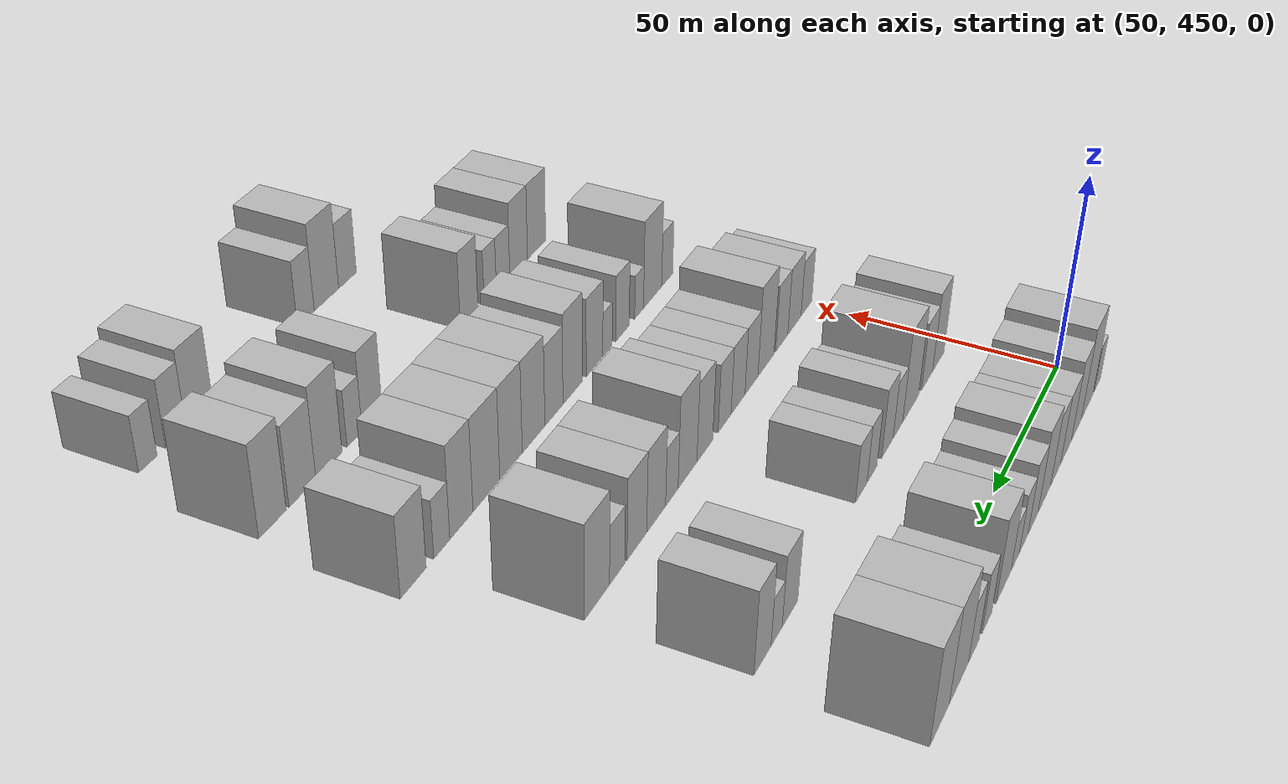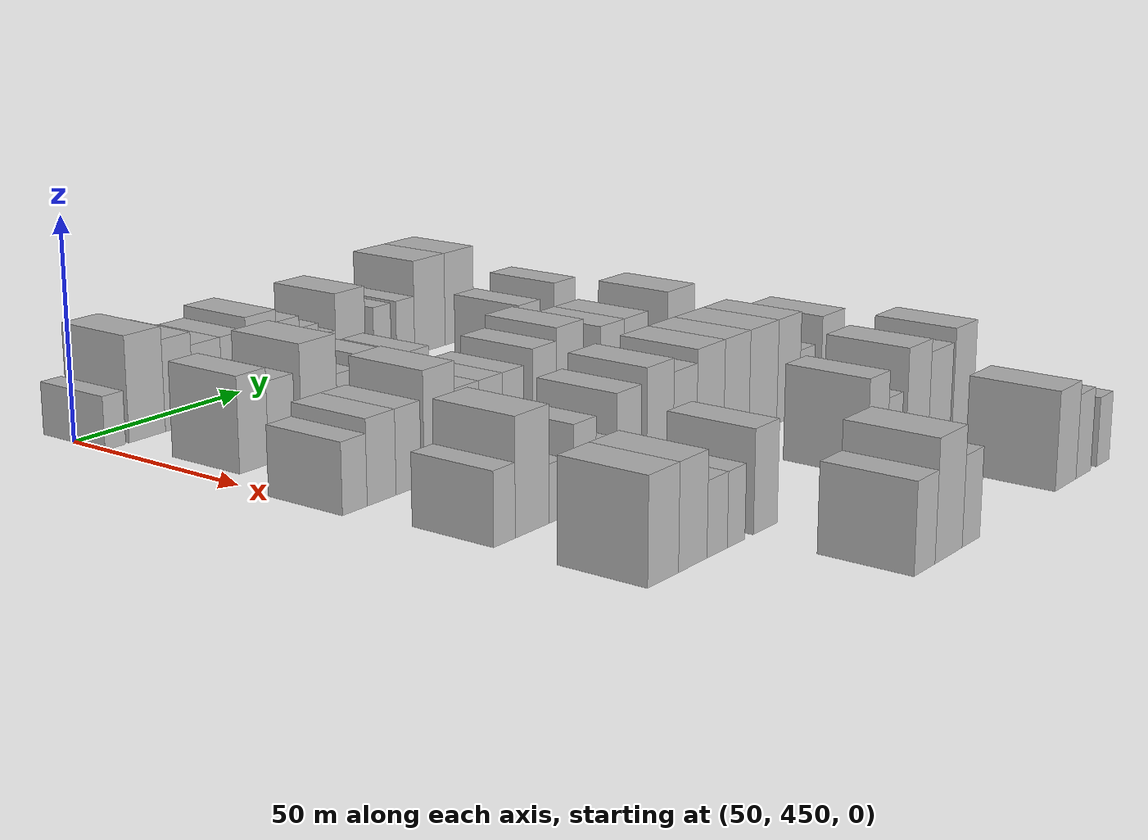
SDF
<sdf version="1.6">
 <world name="default">
  <model name="building_118">
   <static>1</static>
   <pose>50.0000 452.8459 0 0.000000 0.000000 0.000000</pose>
   <link name="link">
    <pose>0 0 6.00 0 0 0</pose>
    <collision name="collision"><geometry><box><size>20.0000 5.8162 12.0000</size></box></geometry></collision>
    <visual name="visual">
     <cast_shadows>0</cast_shadows>
     <geometry><box><size>20.0000 5.8162 12.0000</size></box></geometry>
     <material>
      <script>
       <uri>model://HANNAS_wall/materials/scripts</uri>
       <uri>model://HANNAS_wall/materials/textures</uri>
       <name>vrc/HANNAS_wall</name>
      </script>
     </material>
    </visual>
   </link>
  </model>
  <model name="building_119">
   <static>1</static>
   <pose>50.0000 462.0516 0 0.000000 0.000000 0.000000</pose>
   <link name="link">
    <pose>0 0 12.00 0 0 0</pose>
    <collision name="collision"><geometry><box><size>20.0000 10.5953 24.0000</size></box></geometry></collision>
    <visual name="visual">
     <cast_shadows>0</cast_shadows>
     <geometry><box><size>20.0000 10.5953 24.0000</size></box></geometry>
     <material>
      <script>
       <uri>model://HANNAS_wall/materials/scripts</uri>
       <uri>model://HANNAS_wall/materials/textures</uri>
       <name>vrc/HANNAS_wall</name>
      </script>
     </material>
    </visual>
   </link>
  </model>
  <model name="building_120">
   <static>1</static>
   <pose>50.0000 471.6223 0 0.000000 0.000000 0.000000</pose>
   <link name="link">
    <pose>0 0 10.50 0 0 0</pose>
    <collision name="collision"><geometry><box><size>20.0000 8.5461 21.0000</size></box></geometry></collision>
    <visual name="visual">
     <cast_shadows>0</cast_shadows>
     <geometry><box><size>20.0000 8.5461 21.0000</size></box></geometry>
     <material>
      <script>
       <uri>model://HANNAS_wall/materials/scripts</uri>
       <uri>model://HANNAS_wall/materials/textures</uri>
       <name>vrc/HANNAS_wall</name>
      </script>
     </material>
    </visual>
   </link>
  </model>
  <model name="building_121">
   <static>1</static>
   <pose>50.0000 480.3836 0 0.000000 0.000000 0.000000</pose>
   <link name="link">
    <pose>0 0 9.00 0 0 0</pose>
    <collision name="collision"><geometry><box><size>20.0000 8.9765 18.0000</size></box></geometry></collision>
    <visual name="visual">
     <cast_shadows>0</cast_shadows>
     <geometry><box><size>20.0000 8.9765 18.0000</size></box></geometry>
     <material>
      <script>
       <uri>model://HANNAS_wall/materials/scripts</uri>
       <uri>model://HANNAS_wall/materials/textures</uri>
       <name>vrc/HANNAS_wall</name>
      </script>
     </material>
    </visual>
   </link>
  </model>
  <model name="building_122">
   <static>1</static>
   <pose>50.0000 488.8689 0 0.000000 0.000000 0.000000</pose>
   <link name="link">
    <pose>0 0 9.00 0 0 0</pose>
    <collision name="collision"><geometry><box><size>20.0000 7.9940 18.0000</size></box></geometry></collision>
    <visual name="visual">
     <cast_shadows>0</cast_shadows>
     <geometry><box><size>20.0000 7.9940 18.0000</size></box></geometry>
     <material>
      <script>
       <uri>model://HANNAS_wall/materials/scripts</uri>
       <uri>model://HANNAS_wall/materials/textures</uri>
       <name>vrc/HANNAS_wall</name>
      </script>
     </material>
    </visual>
   </link>
  </model>
  <model name="building_123">
   <static>1</static>
   <pose>50.0000 497.8112 0 0.000000 0.000000 0.000000</pose>
   <link name="link">
    <pose>0 0 10.50 0 0 0</pose>
    <collision name="collision"><geometry><box><size>20.0000 9.8906 21.0000</size></box></geometry></collision>
    <visual name="visual">
     <cast_shadows>0</cast_shadows>
     <geometry><box><size>20.0000 9.8906 21.0000</size></box></geometry>
     <material>
      <script>
       <uri>model://HANNAS_wall/materials/scripts</uri>
       <uri>model://HANNAS_wall/materials/textures</uri>
       <name>vrc/HANNAS_wall</name>
      </script>
     </material>
    </visual>
   </link>
  </model>
  <model name="building_124">
   <static>1</static>
   <pose>50.0000 506.5687 0 0.000000 0.000000 0.000000</pose>
   <link name="link">
    <pose>0 0 9.00 0 0 0</pose>
    <collision name="collision"><geometry><box><size>20.0000 7.6245 18.0000</size></box></geometry></collision>
    <visual name="visual">
     <cast_shadows>0</cast_shadows>
     <geometry><box><size>20.0000 7.6245 18.0000</size></box></geometry>
     <material>
      <script>
       <uri>model://HANNAS_wall/materials/scripts</uri>
       <uri>model://HANNAS_wall/materials/textures</uri>
       <name>vrc/HANNAS_wall</name>
      </script>
     </material>
    </visual>
   </link>
  </model>
  <model name="building_125">
   <static>1</static>
   <pose>50.0000 513.5893 0 0.000000 0.000000 0.000000</pose>
   <link name="link">
    <pose>0 0 7.50 0 0 0</pose>
    <collision name="collision"><geometry><box><size>20.0000 6.4167 15.0000</size></box></geometry></collision>
    <visual name="visual">
     <cast_shadows>0</cast_shadows>
     <geometry><box><size>20.0000 6.4167 15.0000</size></box></geometry>
     <material>
      <script>
       <uri>model://HANNAS_wall/materials/scripts</uri>
       <uri>model://HANNAS_wall/materials/textures</uri>
       <name>vrc/HANNAS_wall</name>
      </script>
     </material>
    </visual>
   </link>
  </model>
  <model name="building_126">
   <static>1</static>
   <pose>50.0000 519.7809 0 0.000000 0.000000 0.000000</pose>
   <link name="link">
    <pose>0 0 6.00 0 0 0</pose>
    <collision name="collision"><geometry><box><size>20.0000 5.9664 12.0000</size></box></geometry></collision>
    <visual name="visual">
     <cast_shadows>0</cast_shadows>
     <geometry><box><size>20.0000 5.9664 12.0000</size></box></geometry>
     <material>
      <script>
       <uri>model://HANNAS_wall/materials/scripts</uri>
       <uri>model://HANNAS_wall/materials/textures</uri>
       <name>vrc/HANNAS_wall</name>
      </script>
     </material>
    </visual>
   </link>
  </model>
  <model name="building_127">
   <static>1</static>
   <pose>50.0000 528.0088 0 0.000000 0.000000 0.000000</pose>
   <link name="link">
    <pose>0 0 10.50 0 0 0</pose>
    <collision name="collision"><geometry><box><size>20.0000 10.4894 21.0000</size></box></geometry></collision>
    <visual name="visual">
     <cast_shadows>0</cast_shadows>
     <geometry><box><size>20.0000 10.4894 21.0000</size></box></geometry>
     <material>
      <script>
       <uri>model://HANNAS_wall/materials/scripts</uri>
       <uri>model://HANNAS_wall/materials/textures</uri>
       <name>vrc/HANNAS_wall</name>
      </script>
     </material>
    </visual>
   </link>
  </model>
  <model name="building_128">
   <static>1</static>
   <pose>50.0000 539.4592 0 0.000000 0.000000 0.000000</pose>
   <link name="link">
    <pose>0 0 7.50 0 0 0</pose>
    <collision name="collision"><geometry><box><size>20.0000 6.4115 15.0000</size></box></geometry></collision>
    <visual name="visual">
     <cast_shadows>0</cast_shadows>
     <geometry><box><size>20.0000 6.4115 15.0000</size></box></geometry>
     <material>
      <script>
       <uri>model://HANNAS_wall/materials/scripts</uri>
       <uri>model://HANNAS_wall/materials/textures</uri>
       <name>vrc/HANNAS_wall</name>
      </script>
     </material>
    </visual>
   </link>
  </model>
  <model name="building_129">
   <static>1</static>
   <pose>50.0000 548.0926 0 0.000000 0.000000 0.000000</pose>
   <link name="link">
    <pose>0 0 7.50 0 0 0</pose>
    <collision name="collision"><geometry><box><size>20.0000 6.8553 15.0000</size></box></geometry></collision>
    <visual name="visual">
     <cast_shadows>0</cast_shadows>
     <geometry><box><size>20.0000 6.8553 15.0000</size></box></geometry>
     <material>
      <script>
       <uri>model://HANNAS_wall/materials/scripts</uri>
       <uri>model://HANNAS_wall/materials/textures</uri>
       <name>vrc/HANNAS_wall</name>
      </script>
     </material>
    </visual>
   </link>
  </model>
  <model name="building_130">
   <static>1</static>
   <pose>50.0000 557.4986 0 0.000000 0.000000 0.000000</pose>
   <link name="link">
    <pose>0 0 12.00 0 0 0</pose>
    <collision name="collision"><geometry><box><size>20.0000 11.9567 24.0000</size></box></geometry></collision>
    <visual name="visual">
     <cast_shadows>0</cast_shadows>
     <geometry><box><size>20.0000 11.9567 24.0000</size></box></geometry>
     <material>
      <script>
       <uri>model://HANNAS_wall/materials/scripts</uri>
       <uri>model://HANNAS_wall/materials/textures</uri>
       <name>vrc/HANNAS_wall</name>
      </script>
     </material>
    </visual>
   </link>
  </model>
  <model name="building_131">
   <static>1</static>
   <pose>50.0000 569.2529 0 0.000000 0.000000 0.000000</pose>
   <link name="link">
    <pose>0 0 12.00 0 0 0</pose>
    <collision name="collision"><geometry><box><size>20.0000 11.5518 24.0000</size></box></geometry></collision>
    <visual name="visual">
     <cast_shadows>0</cast_shadows>
     <geometry><box><size>20.0000 11.5518 24.0000</size></box></geometry>
     <material>
      <script>
       <uri>model://HANNAS_wall/materials/scripts</uri>
       <uri>model://HANNAS_wall/materials/textures</uri>
       <name>vrc/HANNAS_wall</name>
      </script>
     </material>
    </visual>
   </link>
  </model>
  <model name="building_246">
   <static>1</static>
   <pose>85.0000 459.6741 0 0.000000 0.000000 0.000000</pose>
   <link name="link">
    <pose>0 0 10.50 0 0 0</pose>
    <collision name="collision"><geometry><box><size>20.0000 8.4980 21.0000</size></box></geometry></collision>
    <visual name="visual">
     <cast_shadows>0</cast_shadows>
     <geometry><box><size>20.0000 8.4980 21.0000</size></box></geometry>
     <material>
      <script>
       <uri>model://HANNAS_wall/materials/scripts</uri>
       <uri>model://HANNAS_wall/materials/textures</uri>
       <name>vrc/HANNAS_wall</name>
      </script>
     </material>
    </visual>
   </link>
  </model>
  <model name="building_247">
   <static>1</static>
   <pose>85.0000 467.9754 0 0.000000 0.000000 0.000000</pose>
   <link name="link">
    <pose>0 0 9.00 0 0 0</pose>
    <collision name="collision"><geometry><box><size>20.0000 8.1045 18.0000</size></box></geometry></collision>
    <visual name="visual">
     <cast_shadows>0</cast_shadows>
     <geometry><box><size>20.0000 8.1045 18.0000</size></box></geometry>
     <material>
      <script>
       <uri>model://HANNAS_wall/materials/scripts</uri>
       <uri>model://HANNAS_wall/materials/textures</uri>
       <name>vrc/HANNAS_wall</name>
      </script>
     </material>
    </visual>
   </link>
  </model>
  <model name="building_248">
   <static>1</static>
   <pose>85.0000 479.6549 0 0.000000 0.000000 0.000000</pose>
   <link name="link">
    <pose>0 0 12.00 0 0 0</pose>
    <collision name="collision"><geometry><box><size>20.0000 11.2544 24.0000</size></box></geometry></collision>
    <visual name="visual">
     <cast_shadows>0</cast_shadows>
     <geometry><box><size>20.0000 11.2544 24.0000</size></box></geometry>
     <material>
      <script>
       <uri>model://HANNAS_wall/materials/scripts</uri>
       <uri>model://HANNAS_wall/materials/textures</uri>
       <name>vrc/HANNAS_wall</name>
      </script>
     </material>
    </visual>
   </link>
  </model>
  <model name="building_249">
   <static>1</static>
   <pose>85.0000 488.5031 0 0.000000 0.000000 0.000000</pose>
   <link name="link">
    <pose>0 0 7.50 0 0 0</pose>
    <collision name="collision"><geometry><box><size>20.0000 6.4422 15.0000</size></box></geometry></collision>
    <visual name="visual">
     <cast_shadows>0</cast_shadows>
     <geometry><box><size>20.0000 6.4422 15.0000</size></box></geometry>
     <material>
      <script>
       <uri>model://HANNAS_wall/materials/scripts</uri>
       <uri>model://HANNAS_wall/materials/textures</uri>
       <name>vrc/HANNAS_wall</name>
      </script>
     </material>
    </visual>
   </link>
  </model>
  <model name="building_250">
   <static>1</static>
   <pose>85.0000 495.5479 0 0.000000 0.000000 0.000000</pose>
   <link name="link">
    <pose>0 0 9.00 0 0 0</pose>
    <collision name="collision"><geometry><box><size>20.0000 7.6474 18.0000</size></box></geometry></collision>
    <visual name="visual">
     <cast_shadows>0</cast_shadows>
     <geometry><box><size>20.0000 7.6474 18.0000</size></box></geometry>
     <material>
      <script>
       <uri>model://HANNAS_wall/materials/scripts</uri>
       <uri>model://HANNAS_wall/materials/textures</uri>
       <name>vrc/HANNAS_wall</name>
      </script>
     </material>
    </visual>
   </link>
  </model>
  <model name="building_251">
   <static>1</static>
   <pose>85.0000 505.5593 0 0.000000 0.000000 0.000000</pose>
   <link name="link">
    <pose>0 0 7.50 0 0 0</pose>
    <collision name="collision"><geometry><box><size>20.0000 6.3752 15.0000</size></box></geometry></collision>
    <visual name="visual">
     <cast_shadows>0</cast_shadows>
     <geometry><box><size>20.0000 6.3752 15.0000</size></box></geometry>
     <material>
      <script>
       <uri>model://HANNAS_wall/materials/scripts</uri>
       <uri>model://HANNAS_wall/materials/textures</uri>
       <name>vrc/HANNAS_wall</name>
      </script>
     </material>
    </visual>
   </link>
  </model>
  <model name="building_252">
   <static>1</static>
   <pose>85.0000 512.3830 0 0.000000 0.000000 0.000000</pose>
   <link name="link">
    <pose>0 0 7.50 0 0 0</pose>
    <collision name="collision"><geometry><box><size>20.0000 7.2721 15.0000</size></box></geometry></collision>
    <visual name="visual">
     <cast_shadows>0</cast_shadows>
     <geometry><box><size>20.0000 7.2721 15.0000</size></box></geometry>
     <material>
      <script>
       <uri>model://HANNAS_wall/materials/scripts</uri>
       <uri>model://HANNAS_wall/materials/textures</uri>
       <name>vrc/HANNAS_wall</name>
      </script>
     </material>
    </visual>
   </link>
  </model>
  <model name="building_253">
   <static>1</static>
   <pose>85.0000 553.4987 0 0.000000 0.000000 0.000000</pose>
   <link name="link">
    <pose>0 0 9.00 0 0 0</pose>
    <collision name="collision"><geometry><box><size>20.0000 8.3198 18.0000</size></box></geometry></collision>
    <visual name="visual">
     <cast_shadows>0</cast_shadows>
     <geometry><box><size>20.0000 8.3198 18.0000</size></box></geometry>
     <material>
      <script>
       <uri>model://HANNAS_wall/materials/scripts</uri>
       <uri>model://HANNAS_wall/materials/textures</uri>
       <name>vrc/HANNAS_wall</name>
      </script>
     </material>
    </visual>
   </link>
  </model>
  <model name="building_254">
   <static>1</static>
   <pose>85.0000 560.5614 0 0.000000 0.000000 0.000000</pose>
   <link name="link">
    <pose>0 0 6.00 0 0 0</pose>
    <collision name="collision"><geometry><box><size>20.0000 5.8056 12.0000</size></box></geometry></collision>
    <visual name="visual">
     <cast_shadows>0</cast_shadows>
     <geometry><box><size>20.0000 5.8056 12.0000</size></box></geometry>
     <material>
      <script>
       <uri>model://HANNAS_wall/materials/scripts</uri>
       <uri>model://HANNAS_wall/materials/textures</uri>
       <name>vrc/HANNAS_wall</name>
      </script>
     </material>
    </visual>
   </link>
  </model>
  <model name="building_255">
   <static>1</static>
   <pose>85.0000 567.7735 0 0.000000 0.000000 0.000000</pose>
   <link name="link">
    <pose>0 0 10.50 0 0 0</pose>
    <collision name="collision"><geometry><box><size>20.0000 8.6186 21.0000</size></box></geometry></collision>
    <visual name="visual">
     <cast_shadows>0</cast_shadows>
     <geometry><box><size>20.0000 8.6186 21.0000</size></box></geometry>
     <material>
      <script>
       <uri>model://HANNAS_wall/materials/scripts</uri>
       <uri>model://HANNAS_wall/materials/textures</uri>
       <name>vrc/HANNAS_wall</name>
      </script>
     </material>
    </visual>
   </link>
  </model>
  <model name="building_369">
   <static>1</static>
   <pose>120.0000 452.2037 0 0.000000 0.000000 0.000000</pose>
   <link name="link">
    <pose>0 0 7.50 0 0 0</pose>
    <collision name="collision"><geometry><box><size>20.0000 7.2094 15.0000</size></box></geometry></collision>
    <visual name="visual">
     <cast_shadows>0</cast_shadows>
     <geometry><box><size>20.0000 7.2094 15.0000</size></box></geometry>
     <material>
      <script>
       <uri>model://HANNAS_wall/materials/scripts</uri>
       <uri>model://HANNAS_wall/materials/textures</uri>
       <name>vrc/HANNAS_wall</name>
      </script>
     </material>
    </visual>
   </link>
  </model>
  <model name="building_370">
   <static>1</static>
   <pose>120.0000 460.1329 0 0.000000 0.000000 0.000000</pose>
   <link name="link">
    <pose>0 0 9.00 0 0 0</pose>
    <collision name="collision"><geometry><box><size>20.0000 8.6489 18.0000</size></box></geometry></collision>
    <visual name="visual">
     <cast_shadows>0</cast_shadows>
     <geometry><box><size>20.0000 8.6489 18.0000</size></box></geometry>
     <material>
      <script>
       <uri>model://HANNAS_wall/materials/scripts</uri>
       <uri>model://HANNAS_wall/materials/textures</uri>
       <name>vrc/HANNAS_wall</name>
      </script>
     </material>
    </visual>
   </link>
  </model>
  <model name="building_371">
   <static>1</static>
   <pose>120.0000 468.3090 0 0.000000 0.000000 0.000000</pose>
   <link name="link">
    <pose>0 0 9.00 0 0 0</pose>
    <collision name="collision"><geometry><box><size>20.0000 7.7034 18.0000</size></box></geometry></collision>
    <visual name="visual">
     <cast_shadows>0</cast_shadows>
     <geometry><box><size>20.0000 7.7034 18.0000</size></box></geometry>
     <material>
      <script>
       <uri>model://HANNAS_wall/materials/scripts</uri>
       <uri>model://HANNAS_wall/materials/textures</uri>
       <name>vrc/HANNAS_wall</name>
      </script>
     </material>
    </visual>
   </link>
  </model>
  <model name="building_372">
   <static>1</static>
   <pose>120.0000 478.1275 0 0.000000 0.000000 0.000000</pose>
   <link name="link">
    <pose>0 0 12.00 0 0 0</pose>
    <collision name="collision"><geometry><box><size>20.0000 9.9336 24.0000</size></box></geometry></collision>
    <visual name="visual">
     <cast_shadows>0</cast_shadows>
     <geometry><box><size>20.0000 9.9336 24.0000</size></box></geometry>
     <material>
      <script>
       <uri>model://HANNAS_wall/materials/scripts</uri>
       <uri>model://HANNAS_wall/materials/textures</uri>
       <name>vrc/HANNAS_wall</name>
      </script>
     </material>
    </visual>
   </link>
  </model>
  <model name="building_373">
   <static>1</static>
   <pose>120.0000 486.9750 0 0.000000 0.000000 0.000000</pose>
   <link name="link">
    <pose>0 0 9.00 0 0 0</pose>
    <collision name="collision"><geometry><box><size>20.0000 7.7614 18.0000</size></box></geometry></collision>
    <visual name="visual">
     <cast_shadows>0</cast_shadows>
     <geometry><box><size>20.0000 7.7614 18.0000</size></box></geometry>
     <material>
      <script>
       <uri>model://HANNAS_wall/materials/scripts</uri>
       <uri>model://HANNAS_wall/materials/textures</uri>
       <name>vrc/HANNAS_wall</name>
      </script>
     </material>
    </visual>
   </link>
  </model>
  <model name="building_374">
   <static>1</static>
   <pose>120.0000 494.8919 0 0.000000 0.000000 0.000000</pose>
   <link name="link">
    <pose>0 0 9.00 0 0 0</pose>
    <collision name="collision"><geometry><box><size>20.0000 8.0724 18.0000</size></box></geometry></collision>
    <visual name="visual">
     <cast_shadows>0</cast_shadows>
     <geometry><box><size>20.0000 8.0724 18.0000</size></box></geometry>
     <material>
      <script>
       <uri>model://HANNAS_wall/materials/scripts</uri>
       <uri>model://HANNAS_wall/materials/textures</uri>
       <name>vrc/HANNAS_wall</name>
      </script>
     </material>
    </visual>
   </link>
  </model>
  <model name="building_375">
   <static>1</static>
   <pose>120.0000 502.6030 0 0.000000 0.000000 0.000000</pose>
   <link name="link">
    <pose>0 0 9.00 0 0 0</pose>
    <collision name="collision"><geometry><box><size>20.0000 7.3498 18.0000</size></box></geometry></collision>
    <visual name="visual">
     <cast_shadows>0</cast_shadows>
     <geometry><box><size>20.0000 7.3498 18.0000</size></box></geometry>
     <material>
      <script>
       <uri>model://HANNAS_wall/materials/scripts</uri>
       <uri>model://HANNAS_wall/materials/textures</uri>
       <name>vrc/HANNAS_wall</name>
      </script>
     </material>
    </visual>
   </link>
  </model>
  <model name="building_376">
   <static>1</static>
   <pose>120.0000 513.5923 0 0.000000 0.000000 0.000000</pose>
   <link name="link">
    <pose>0 0 10.50 0 0 0</pose>
    <collision name="collision"><geometry><box><size>20.0000 8.6288 21.0000</size></box></geometry></collision>
    <visual name="visual">
     <cast_shadows>0</cast_shadows>
     <geometry><box><size>20.0000 8.6288 21.0000</size></box></geometry>
     <material>
      <script>
       <uri>model://HANNAS_wall/materials/scripts</uri>
       <uri>model://HANNAS_wall/materials/textures</uri>
       <name>vrc/HANNAS_wall</name>
      </script>
     </material>
    </visual>
   </link>
  </model>
  <model name="building_377">
   <static>1</static>
   <pose>120.0000 522.8773 0 0.000000 0.000000 0.000000</pose>
   <link name="link">
    <pose>0 0 12.00 0 0 0</pose>
    <collision name="collision"><geometry><box><size>20.0000 9.9412 24.0000</size></box></geometry></collision>
    <visual name="visual">
     <cast_shadows>0</cast_shadows>
     <geometry><box><size>20.0000 9.9412 24.0000</size></box></geometry>
     <material>
      <script>
       <uri>model://HANNAS_wall/materials/scripts</uri>
       <uri>model://HANNAS_wall/materials/textures</uri>
       <name>vrc/HANNAS_wall</name>
      </script>
     </material>
    </visual>
   </link>
  </model>
  <model name="building_378">
   <static>1</static>
   <pose>120.0000 531.0476 0 0.000000 0.000000 0.000000</pose>
   <link name="link">
    <pose>0 0 7.50 0 0 0</pose>
    <collision name="collision"><geometry><box><size>20.0000 6.3992 15.0000</size></box></geometry></collision>
    <visual name="visual">
     <cast_shadows>0</cast_shadows>
     <geometry><box><size>20.0000 6.3992 15.0000</size></box></geometry>
     <material>
      <script>
       <uri>model://HANNAS_wall/materials/scripts</uri>
       <uri>model://HANNAS_wall/materials/textures</uri>
       <name>vrc/HANNAS_wall</name>
      </script>
     </material>
    </visual>
   </link>
  </model>
  <model name="building_379">
   <static>1</static>
   <pose>120.0000 538.9505 0 0.000000 0.000000 0.000000</pose>
   <link name="link">
    <pose>0 0 10.50 0 0 0</pose>
    <collision name="collision"><geometry><box><size>20.0000 9.4066 21.0000</size></box></geometry></collision>
    <visual name="visual">
     <cast_shadows>0</cast_shadows>
     <geometry><box><size>20.0000 9.4066 21.0000</size></box></geometry>
     <material>
      <script>
       <uri>model://HANNAS_wall/materials/scripts</uri>
       <uri>model://HANNAS_wall/materials/textures</uri>
       <name>vrc/HANNAS_wall</name>
      </script>
     </material>
    </visual>
   </link>
  </model>
  <model name="building_380">
   <static>1</static>
   <pose>120.0000 548.3569 0 0.000000 0.000000 0.000000</pose>
   <link name="link">
    <pose>0 0 10.50 0 0 0</pose>
    <collision name="collision"><geometry><box><size>20.0000 9.4062 21.0000</size></box></geometry></collision>
    <visual name="visual">
     <cast_shadows>0</cast_shadows>
     <geometry><box><size>20.0000 9.4062 21.0000</size></box></geometry>
     <material>
      <script>
       <uri>model://HANNAS_wall/materials/scripts</uri>
       <uri>model://HANNAS_wall/materials/textures</uri>
       <name>vrc/HANNAS_wall</name>
      </script>
     </material>
    </visual>
   </link>
  </model>
  <model name="building_381">
   <static>1</static>
   <pose>120.0000 557.6148 0 0.000000 0.000000 0.000000</pose>
   <link name="link">
    <pose>0 0 7.50 0 0 0</pose>
    <collision name="collision"><geometry><box><size>20.0000 7.1094 15.0000</size></box></geometry></collision>
    <visual name="visual">
     <cast_shadows>0</cast_shadows>
     <geometry><box><size>20.0000 7.1094 15.0000</size></box></geometry>
     <material>
      <script>
       <uri>model://HANNAS_wall/materials/scripts</uri>
       <uri>model://HANNAS_wall/materials/textures</uri>
       <name>vrc/HANNAS_wall</name>
      </script>
     </material>
    </visual>
   </link>
  </model>
  <model name="building_382">
   <static>1</static>
   <pose>120.0000 566.8222 0 0.000000 0.000000 0.000000</pose>
   <link name="link">
    <pose>0 0 12.00 0 0 0</pose>
    <collision name="collision"><geometry><box><size>20.0000 11.3055 24.0000</size></box></geometry></collision>
    <visual name="visual">
     <cast_shadows>0</cast_shadows>
     <geometry><box><size>20.0000 11.3055 24.0000</size></box></geometry>
     <material>
      <script>
       <uri>model://HANNAS_wall/materials/scripts</uri>
       <uri>model://HANNAS_wall/materials/textures</uri>
       <name>vrc/HANNAS_wall</name>
      </script>
     </material>
    </visual>
   </link>
  </model>
  <model name="building_499">
   <static>1</static>
   <pose>155.0000 455.2437 0 0.000000 0.000000 0.000000</pose>
   <link name="link">
    <pose>0 0 7.50 0 0 0</pose>
    <collision name="collision"><geometry><box><size>20.0000 6.5792 15.0000</size></box></geometry></collision>
    <visual name="visual">
     <cast_shadows>0</cast_shadows>
     <geometry><box><size>20.0000 6.5792 15.0000</size></box></geometry>
     <material>
      <script>
       <uri>model://HANNAS_wall/materials/scripts</uri>
       <uri>model://HANNAS_wall/materials/textures</uri>
       <name>vrc/HANNAS_wall</name>
      </script>
     </material>
    </visual>
   </link>
  </model>
  <model name="building_500">
   <static>1</static>
   <pose>155.0000 463.7732 0 0.000000 0.000000 0.000000</pose>
   <link name="link">
    <pose>0 0 12.00 0 0 0</pose>
    <collision name="collision"><geometry><box><size>20.0000 10.4799 24.0000</size></box></geometry></collision>
    <visual name="visual">
     <cast_shadows>0</cast_shadows>
     <geometry><box><size>20.0000 10.4799 24.0000</size></box></geometry>
     <material>
      <script>
       <uri>model://HANNAS_wall/materials/scripts</uri>
       <uri>model://HANNAS_wall/materials/textures</uri>
       <name>vrc/HANNAS_wall</name>
      </script>
     </material>
    </visual>
   </link>
  </model>
  <model name="building_501">
   <static>1</static>
   <pose>155.0000 471.5245 0 0.000000 0.000000 0.000000</pose>
   <link name="link">
    <pose>0 0 6.00 0 0 0</pose>
    <collision name="collision"><geometry><box><size>20.0000 5.0227 12.0000</size></box></geometry></collision>
    <visual name="visual">
     <cast_shadows>0</cast_shadows>
     <geometry><box><size>20.0000 5.0227 12.0000</size></box></geometry>
     <material>
      <script>
       <uri>model://HANNAS_wall/materials/scripts</uri>
       <uri>model://HANNAS_wall/materials/textures</uri>
       <name>vrc/HANNAS_wall</name>
      </script>
     </material>
    </visual>
   </link>
  </model>
  <model name="building_502">
   <static>1</static>
   <pose>155.0000 480.7228 0 0.000000 0.000000 0.000000</pose>
   <link name="link">
    <pose>0 0 9.00 0 0 0</pose>
    <collision name="collision"><geometry><box><size>20.0000 7.3739 18.0000</size></box></geometry></collision>
    <visual name="visual">
     <cast_shadows>0</cast_shadows>
     <geometry><box><size>20.0000 7.3739 18.0000</size></box></geometry>
     <material>
      <script>
       <uri>model://HANNAS_wall/materials/scripts</uri>
       <uri>model://HANNAS_wall/materials/textures</uri>
       <name>vrc/HANNAS_wall</name>
      </script>
     </material>
    </visual>
   </link>
  </model>
  <model name="building_503">
   <static>1</static>
   <pose>155.0000 488.8987 0 0.000000 0.000000 0.000000</pose>
   <link name="link">
    <pose>0 0 6.00 0 0 0</pose>
    <collision name="collision"><geometry><box><size>20.0000 4.9778 12.0000</size></box></geometry></collision>
    <visual name="visual">
     <cast_shadows>0</cast_shadows>
     <geometry><box><size>20.0000 4.9778 12.0000</size></box></geometry>
     <material>
      <script>
       <uri>model://HANNAS_wall/materials/scripts</uri>
       <uri>model://HANNAS_wall/materials/textures</uri>
       <name>vrc/HANNAS_wall</name>
      </script>
     </material>
    </visual>
   </link>
  </model>
  <model name="building_504">
   <static>1</static>
   <pose>155.0000 495.7120 0 0.000000 0.000000 0.000000</pose>
   <link name="link">
    <pose>0 0 10.50 0 0 0</pose>
    <collision name="collision"><geometry><box><size>20.0000 8.6489 21.0000</size></box></geometry></collision>
    <visual name="visual">
     <cast_shadows>0</cast_shadows>
     <geometry><box><size>20.0000 8.6489 21.0000</size></box></geometry>
     <material>
      <script>
       <uri>model://HANNAS_wall/materials/scripts</uri>
       <uri>model://HANNAS_wall/materials/textures</uri>
       <name>vrc/HANNAS_wall</name>
      </script>
     </material>
    </visual>
   </link>
  </model>
  <model name="building_505">
   <static>1</static>
   <pose>155.0000 506.9135 0 0.000000 0.000000 0.000000</pose>
   <link name="link">
    <pose>0 0 12.00 0 0 0</pose>
    <collision name="collision"><geometry><box><size>20.0000 9.7540 24.0000</size></box></geometry></collision>
    <visual name="visual">
     <cast_shadows>0</cast_shadows>
     <geometry><box><size>20.0000 9.7540 24.0000</size></box></geometry>
     <material>
      <script>
       <uri>model://HANNAS_wall/materials/scripts</uri>
       <uri>model://HANNAS_wall/materials/textures</uri>
       <name>vrc/HANNAS_wall</name>
      </script>
     </material>
    </visual>
   </link>
  </model>
  <model name="building_506">
   <static>1</static>
   <pose>155.0000 516.2115 0 0.000000 0.000000 0.000000</pose>
   <link name="link">
    <pose>0 0 10.50 0 0 0</pose>
    <collision name="collision"><geometry><box><size>20.0000 8.8420 21.0000</size></box></geometry></collision>
    <visual name="visual">
     <cast_shadows>0</cast_shadows>
     <geometry><box><size>20.0000 8.8420 21.0000</size></box></geometry>
     <material>
      <script>
       <uri>model://HANNAS_wall/materials/scripts</uri>
       <uri>model://HANNAS_wall/materials/textures</uri>
       <name>vrc/HANNAS_wall</name>
      </script>
     </material>
    </visual>
   </link>
  </model>
  <model name="building_507">
   <static>1</static>
   <pose>155.0000 525.9489 0 0.000000 0.000000 0.000000</pose>
   <link name="link">
    <pose>0 0 12.00 0 0 0</pose>
    <collision name="collision"><geometry><box><size>20.0000 10.6328 24.0000</size></box></geometry></collision>
    <visual name="visual">
     <cast_shadows>0</cast_shadows>
     <geometry><box><size>20.0000 10.6328 24.0000</size></box></geometry>
     <material>
      <script>
       <uri>model://HANNAS_wall/materials/scripts</uri>
       <uri>model://HANNAS_wall/materials/textures</uri>
       <name>vrc/HANNAS_wall</name>
      </script>
     </material>
    </visual>
   </link>
  </model>
  <model name="building_508">
   <static>1</static>
   <pose>155.0000 536.3690 0 0.000000 0.000000 0.000000</pose>
   <link name="link">
    <pose>0 0 12.00 0 0 0</pose>
    <collision name="collision"><geometry><box><size>20.0000 10.2075 24.0000</size></box></geometry></collision>
    <visual name="visual">
     <cast_shadows>0</cast_shadows>
     <geometry><box><size>20.0000 10.2075 24.0000</size></box></geometry>
     <material>
      <script>
       <uri>model://HANNAS_wall/materials/scripts</uri>
       <uri>model://HANNAS_wall/materials/textures</uri>
       <name>vrc/HANNAS_wall</name>
      </script>
     </material>
    </visual>
   </link>
  </model>
  <model name="building_509">
   <static>1</static>
   <pose>155.0000 547.3464 0 0.000000 0.000000 0.000000</pose>
   <link name="link">
    <pose>0 0 12.00 0 0 0</pose>
    <collision name="collision"><geometry><box><size>20.0000 11.7472 24.0000</size></box></geometry></collision>
    <visual name="visual">
     <cast_shadows>0</cast_shadows>
     <geometry><box><size>20.0000 11.7472 24.0000</size></box></geometry>
     <material>
      <script>
       <uri>model://HANNAS_wall/materials/scripts</uri>
       <uri>model://HANNAS_wall/materials/textures</uri>
       <name>vrc/HANNAS_wall</name>
      </script>
     </material>
    </visual>
   </link>
  </model>
  <model name="building_510">
   <static>1</static>
   <pose>155.0000 558.0937 0 0.000000 0.000000 0.000000</pose>
   <link name="link">
    <pose>0 0 12.00 0 0 0</pose>
    <collision name="collision"><geometry><box><size>20.0000 9.7474 24.0000</size></box></geometry></collision>
    <visual name="visual">
     <cast_shadows>0</cast_shadows>
     <geometry><box><size>20.0000 9.7474 24.0000</size></box></geometry>
     <material>
      <script>
       <uri>model://HANNAS_wall/materials/scripts</uri>
       <uri>model://HANNAS_wall/materials/textures</uri>
       <name>vrc/HANNAS_wall</name>
      </script>
     </material>
    </visual>
   </link>
  </model>
  <model name="building_511">
   <static>1</static>
   <pose>155.0000 566.2399 0 0.000000 0.000000 0.000000</pose>
   <link name="link">
    <pose>0 0 7.50 0 0 0</pose>
    <collision name="collision"><geometry><box><size>20.0000 6.5451 15.0000</size></box></geometry></collision>
    <visual name="visual">
     <cast_shadows>0</cast_shadows>
     <geometry><box><size>20.0000 6.5451 15.0000</size></box></geometry>
     <material>
      <script>
       <uri>model://HANNAS_wall/materials/scripts</uri>
       <uri>model://HANNAS_wall/materials/textures</uri>
       <name>vrc/HANNAS_wall</name>
      </script>
     </material>
    </visual>
   </link>
  </model>
  <model name="building_512">
   <static>1</static>
   <pose>155.0000 577.5852 0 0.000000 0.000000 0.000000</pose>
   <link name="link">
    <pose>0 0 10.50 0 0 0</pose>
    <collision name="collision"><geometry><box><size>20.0000 10.1455 21.0000</size></box></geometry></collision>
    <visual name="visual">
     <cast_shadows>0</cast_shadows>
     <geometry><box><size>20.0000 10.1455 21.0000</size></box></geometry>
     <material>
      <script>
       <uri>model://HANNAS_wall/materials/scripts</uri>
       <uri>model://HANNAS_wall/materials/textures</uri>
       <name>vrc/HANNAS_wall</name>
      </script>
     </material>
    </visual>
   </link>
  </model>
  <model name="building_632">
   <static>1</static>
   <pose>190.0000 456.6729 0 0.000000 0.000000 0.000000</pose>
   <link name="link">
    <pose>0 0 10.50 0 0 0</pose>
    <collision name="collision"><geometry><box><size>20.0000 9.8232 21.0000</size></box></geometry></collision>
    <visual name="visual">
     <cast_shadows>0</cast_shadows>
     <geometry><box><size>20.0000 9.8232 21.0000</size></box></geometry>
     <material>
      <script>
       <uri>model://HANNAS_wall/materials/scripts</uri>
       <uri>model://HANNAS_wall/materials/textures</uri>
       <name>vrc/HANNAS_wall</name>
      </script>
     </material>
    </visual>
   </link>
  </model>
  <model name="building_633">
   <static>1</static>
   <pose>190.0000 466.2676 0 0.000000 0.000000 0.000000</pose>
   <link name="link">
    <pose>0 0 10.50 0 0 0</pose>
    <collision name="collision"><geometry><box><size>20.0000 9.3662 21.0000</size></box></geometry></collision>
    <visual name="visual">
     <cast_shadows>0</cast_shadows>
     <geometry><box><size>20.0000 9.3662 21.0000</size></box></geometry>
     <material>
      <script>
       <uri>model://HANNAS_wall/materials/scripts</uri>
       <uri>model://HANNAS_wall/materials/textures</uri>
       <name>vrc/HANNAS_wall</name>
      </script>
     </material>
    </visual>
   </link>
  </model>
  <model name="building_634">
   <static>1</static>
   <pose>190.0000 474.4112 0 0.000000 0.000000 0.000000</pose>
   <link name="link">
    <pose>0 0 7.50 0 0 0</pose>
    <collision name="collision"><geometry><box><size>20.0000 6.9211 15.0000</size></box></geometry></collision>
    <visual name="visual">
     <cast_shadows>0</cast_shadows>
     <geometry><box><size>20.0000 6.9211 15.0000</size></box></geometry>
     <material>
      <script>
       <uri>model://HANNAS_wall/materials/scripts</uri>
       <uri>model://HANNAS_wall/materials/textures</uri>
       <name>vrc/HANNAS_wall</name>
      </script>
     </material>
    </visual>
   </link>
  </model>
  <model name="building_635">
   <static>1</static>
   <pose>190.0000 480.9661 0 0.000000 0.000000 0.000000</pose>
   <link name="link">
    <pose>0 0 7.50 0 0 0</pose>
    <collision name="collision"><geometry><box><size>20.0000 6.1887 15.0000</size></box></geometry></collision>
    <visual name="visual">
     <cast_shadows>0</cast_shadows>
     <geometry><box><size>20.0000 6.1887 15.0000</size></box></geometry>
     <material>
      <script>
       <uri>model://HANNAS_wall/materials/scripts</uri>
       <uri>model://HANNAS_wall/materials/textures</uri>
       <name>vrc/HANNAS_wall</name>
      </script>
     </material>
    </visual>
   </link>
  </model>
  <model name="building_636">
   <static>1</static>
   <pose>190.0000 491.3819 0 0.000000 0.000000 0.000000</pose>
   <link name="link">
    <pose>0 0 10.50 0 0 0</pose>
    <collision name="collision"><geometry><box><size>20.0000 8.6429 21.0000</size></box></geometry></collision>
    <visual name="visual">
     <cast_shadows>0</cast_shadows>
     <geometry><box><size>20.0000 8.6429 21.0000</size></box></geometry>
     <material>
      <script>
       <uri>model://HANNAS_wall/materials/scripts</uri>
       <uri>model://HANNAS_wall/materials/textures</uri>
       <name>vrc/HANNAS_wall</name>
      </script>
     </material>
    </visual>
   </link>
  </model>
  <model name="building_637">
   <static>1</static>
   <pose>190.0000 535.4432 0 0.000000 0.000000 0.000000</pose>
   <link name="link">
    <pose>0 0 10.50 0 0 0</pose>
    <collision name="collision"><geometry><box><size>20.0000 8.4932 21.0000</size></box></geometry></collision>
    <visual name="visual">
     <cast_shadows>0</cast_shadows>
     <geometry><box><size>20.0000 8.4932 21.0000</size></box></geometry>
     <material>
      <script>
       <uri>model://HANNAS_wall/materials/scripts</uri>
       <uri>model://HANNAS_wall/materials/textures</uri>
       <name>vrc/HANNAS_wall</name>
      </script>
     </material>
    </visual>
   </link>
  </model>
  <model name="building_638">
   <static>1</static>
   <pose>190.0000 542.7912 0 0.000000 0.000000 0.000000</pose>
   <link name="link">
    <pose>0 0 7.50 0 0 0</pose>
    <collision name="collision"><geometry><box><size>20.0000 6.2028 15.0000</size></box></geometry></collision>
    <visual name="visual">
     <cast_shadows>0</cast_shadows>
     <geometry><box><size>20.0000 6.2028 15.0000</size></box></geometry>
     <material>
      <script>
       <uri>model://HANNAS_wall/materials/scripts</uri>
       <uri>model://HANNAS_wall/materials/textures</uri>
       <name>vrc/HANNAS_wall</name>
      </script>
     </material>
    </visual>
   </link>
  </model>
  <model name="building_639">
   <static>1</static>
   <pose>190.0000 553.0579 0 0.000000 0.000000 0.000000</pose>
   <link name="link">
    <pose>0 0 12.00 0 0 0</pose>
    <collision name="collision"><geometry><box><size>20.0000 10.3305 24.0000</size></box></geometry></collision>
    <visual name="visual">
     <cast_shadows>0</cast_shadows>
     <geometry><box><size>20.0000 10.3305 24.0000</size></box></geometry>
     <material>
      <script>
       <uri>model://HANNAS_wall/materials/scripts</uri>
       <uri>model://HANNAS_wall/materials/textures</uri>
       <name>vrc/HANNAS_wall</name>
      </script>
     </material>
    </visual>
   </link>
  </model>
  <model name="building_640">
   <static>1</static>
   <pose>190.0000 563.3688 0 0.000000 0.000000 0.000000</pose>
   <link name="link">
    <pose>0 0 10.50 0 0 0</pose>
    <collision name="collision"><geometry><box><size>20.0000 10.2913 21.0000</size></box></geometry></collision>
    <visual name="visual">
     <cast_shadows>0</cast_shadows>
     <geometry><box><size>20.0000 10.2913 21.0000</size></box></geometry>
     <material>
      <script>
       <uri>model://HANNAS_wall/materials/scripts</uri>
       <uri>model://HANNAS_wall/materials/textures</uri>
       <name>vrc/HANNAS_wall</name>
      </script>
     </material>
    </visual>
   </link>
  </model>
  <model name="building_641">
   <static>1</static>
   <pose>190.0000 574.5813 0 0.000000 0.000000 0.000000</pose>
   <link name="link">
    <pose>0 0 12.00 0 0 0</pose>
    <collision name="collision"><geometry><box><size>20.0000 10.1337 24.0000</size></box></geometry></collision>
    <visual name="visual">
     <cast_shadows>0</cast_shadows>
     <geometry><box><size>20.0000 10.1337 24.0000</size></box></geometry>
     <material>
      <script>
       <uri>model://HANNAS_wall/materials/scripts</uri>
       <uri>model://HANNAS_wall/materials/textures</uri>
       <name>vrc/HANNAS_wall</name>
      </script>
     </material>
    </visual>
   </link>
  </model>
  <model name="building_749">
   <static>1</static>
   <pose>225.0000 489.2578 0 0.000000 0.000000 0.000000</pose>
   <link name="link">
    <pose>0 0 9.00 0 0 0</pose>
    <collision name="collision"><geometry><box><size>20.0000 8.1065 18.0000</size></box></geometry></collision>
    <visual name="visual">
     <cast_shadows>0</cast_shadows>
     <geometry><box><size>20.0000 8.1065 18.0000</size></box></geometry>
     <material>
      <script>
       <uri>model://HANNAS_wall/materials/scripts</uri>
       <uri>model://HANNAS_wall/materials/textures</uri>
       <name>vrc/HANNAS_wall</name>
      </script>
     </material>
    </visual>
   </link>
  </model>
  <model name="building_750">
   <static>1</static>
   <pose>225.0000 498.7594 0 0.000000 0.000000 0.000000</pose>
   <link name="link">
    <pose>0 0 12.00 0 0 0</pose>
    <collision name="collision"><geometry><box><size>20.0000 10.8968 24.0000</size></box></geometry></collision>
    <visual name="visual">
     <cast_shadows>0</cast_shadows>
     <geometry><box><size>20.0000 10.8968 24.0000</size></box></geometry>
     <material>
      <script>
       <uri>model://HANNAS_wall/materials/scripts</uri>
       <uri>model://HANNAS_wall/materials/textures</uri>
       <name>vrc/HANNAS_wall</name>
      </script>
     </material>
    </visual>
   </link>
  </model>
  <model name="building_751">
   <static>1</static>
   <pose>225.0000 507.8689 0 0.000000 0.000000 0.000000</pose>
   <link name="link">
    <pose>0 0 9.00 0 0 0</pose>
    <collision name="collision"><geometry><box><size>20.0000 7.3222 18.0000</size></box></geometry></collision>
    <visual name="visual">
     <cast_shadows>0</cast_shadows>
     <geometry><box><size>20.0000 7.3222 18.0000</size></box></geometry>
     <material>
      <script>
       <uri>model://HANNAS_wall/materials/scripts</uri>
       <uri>model://HANNAS_wall/materials/textures</uri>
       <name>vrc/HANNAS_wall</name>
      </script>
     </material>
    </visual>
   </link>
  </model>
  <model name="building_752">
   <static>1</static>
   <pose>225.0000 550.7203 0 0.000000 0.000000 0.000000</pose>
   <link name="link">
    <pose>0 0 10.50 0 0 0</pose>
    <collision name="collision"><geometry><box><size>20.0000 10.1269 21.0000</size></box></geometry></collision>
    <visual name="visual">
     <cast_shadows>0</cast_shadows>
     <geometry><box><size>20.0000 10.1269 21.0000</size></box></geometry>
     <material>
      <script>
       <uri>model://HANNAS_wall/materials/scripts</uri>
       <uri>model://HANNAS_wall/materials/textures</uri>
       <name>vrc/HANNAS_wall</name>
      </script>
     </material>
    </visual>
   </link>
  </model>
  <model name="building_753">
   <static>1</static>
   <pose>225.0000 559.5087 0 0.000000 0.000000 0.000000</pose>
   <link name="link">
    <pose>0 0 9.00 0 0 0</pose>
    <collision name="collision"><geometry><box><size>20.0000 7.4499 18.0000</size></box></geometry></collision>
    <visual name="visual">
     <cast_shadows>0</cast_shadows>
     <geometry><box><size>20.0000 7.4499 18.0000</size></box></geometry>
     <material>
      <script>
       <uri>model://HANNAS_wall/materials/scripts</uri>
       <uri>model://HANNAS_wall/materials/textures</uri>
       <name>vrc/HANNAS_wall</name>
      </script>
     </material>
    </visual>
   </link>
  </model>
  <model name="building_754">
   <static>1</static>
   <pose>225.0000 569.4989 0 0.000000 0.000000 0.000000</pose>
   <link name="link">
    <pose>0 0 7.50 0 0 0</pose>
    <collision name="collision"><geometry><box><size>20.0000 6.5306 15.0000</size></box></geometry></collision>
    <visual name="visual">
     <cast_shadows>0</cast_shadows>
     <geometry><box><size>20.0000 6.5306 15.0000</size></box></geometry>
     <material>
      <script>
       <uri>model://HANNAS_wall/materials/scripts</uri>
       <uri>model://HANNAS_wall/materials/textures</uri>
       <name>vrc/HANNAS_wall</name>
      </script>
     </material>
    </visual>
   </link>
  </model>
 </world>
</sdf>
